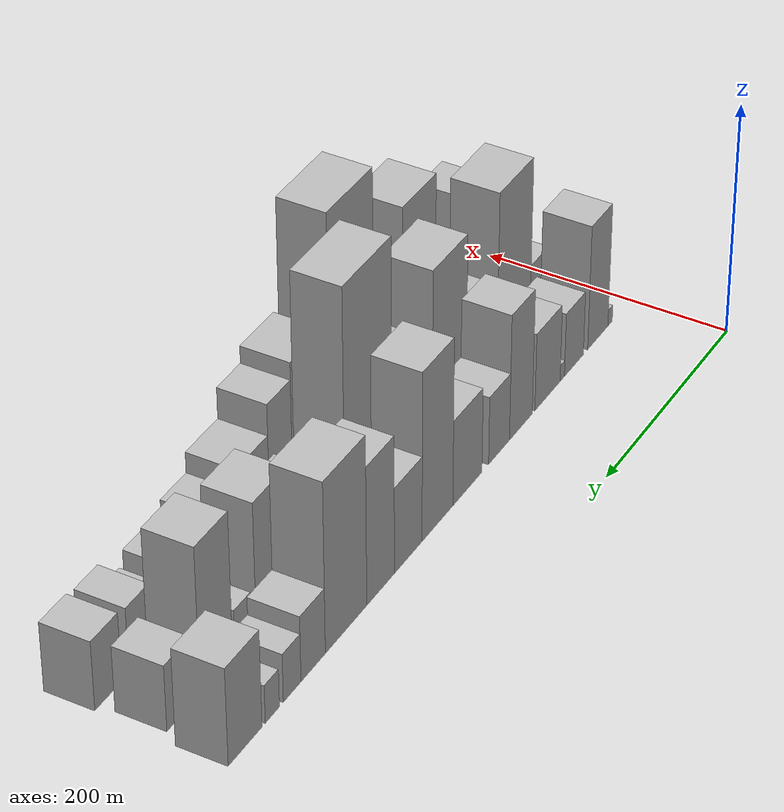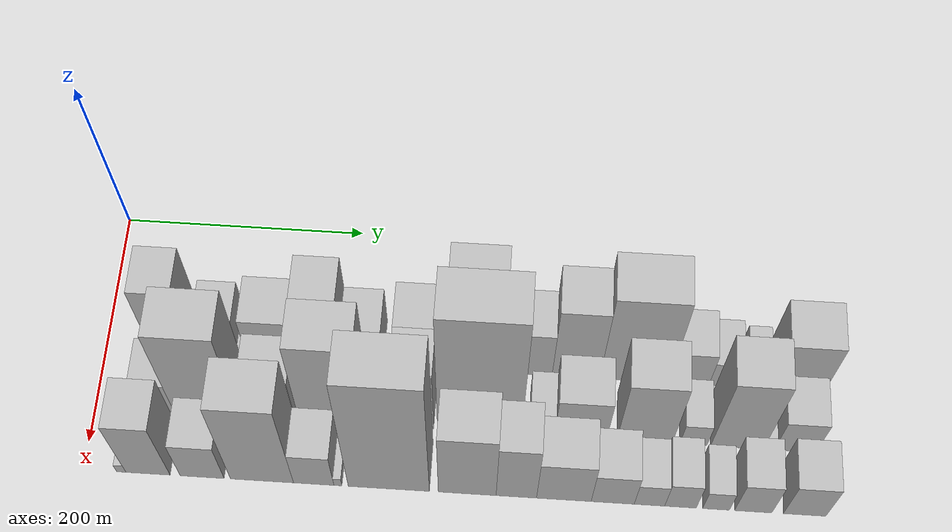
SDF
<sdf version="1.6">
 <world name="default">
  <model name="building_15">
   <static>1</static>
   <pose>100.0000 34.3430 0 0.000000 0.000000 0.000000</pose>
   <link name="link">
    <pose>0 0 7.50 0 0 0</pose>
    <collision name="collision"><geometry><box><size>40.0000 7.2717 15.0000</size></box></geometry></collision>
    <visual name="visual">
     <cast_shadows>0</cast_shadows>
     <geometry><box><size>40.0000 7.2717 15.0000</size></box></geometry>
     <material>
      <script>
       <uri>model://HANNAS_wall/materials/scripts</uri>
       <uri>model://HANNAS_wall/materials/textures</uri>
       <name>vrc/HANNAS_wall</name>
      </script>
     </material>
    </visual>
   </link>
  </model>
  <model name="building_16">
   <static>1</static>
   <pose>100.0000 54.7436 0 0.000000 0.000000 0.000000</pose>
   <link name="link">
    <pose>0 0 55.50 0 0 0</pose>
    <collision name="collision"><geometry><box><size>40.0000 33.5295 111.0000</size></box></geometry></collision>
    <visual name="visual">
     <cast_shadows>0</cast_shadows>
     <geometry><box><size>40.0000 33.5295 111.0000</size></box></geometry>
     <material>
      <script>
       <uri>model://HANNAS_wall/materials/scripts</uri>
       <uri>model://HANNAS_wall/materials/textures</uri>
       <name>vrc/HANNAS_wall</name>
      </script>
     </material>
    </visual>
   </link>
  </model>
  <model name="building_17">
   <static>1</static>
   <pose>100.0000 93.9533 0 0.000000 0.000000 0.000000</pose>
   <link name="link">
    <pose>0 0 28.50 0 0 0</pose>
    <collision name="collision"><geometry><box><size>40.0000 30.8900 57.0000</size></box></geometry></collision>
    <visual name="visual">
     <cast_shadows>0</cast_shadows>
     <geometry><box><size>40.0000 30.8900 57.0000</size></box></geometry>
     <material>
      <script>
       <uri>model://HANNAS_wall/materials/scripts</uri>
       <uri>model://HANNAS_wall/materials/textures</uri>
       <name>vrc/HANNAS_wall</name>
      </script>
     </material>
    </visual>
   </link>
  </model>
  <model name="building_18">
   <static>1</static>
   <pose>100.0000 112.8264 0 0.000000 0.000000 0.000000</pose>
   <link name="link">
    <pose>0 0 7.50 0 0 0</pose>
    <collision name="collision"><geometry><box><size>40.0000 6.8562 15.0000</size></box></geometry></collision>
    <visual name="visual">
     <cast_shadows>0</cast_shadows>
     <geometry><box><size>40.0000 6.8562 15.0000</size></box></geometry>
     <material>
      <script>
       <uri>model://HANNAS_wall/materials/scripts</uri>
       <uri>model://HANNAS_wall/materials/textures</uri>
       <name>vrc/HANNAS_wall</name>
      </script>
     </material>
    </visual>
   </link>
  </model>
  <model name="building_19">
   <static>1</static>
   <pose>100.0000 136.2971 0 0.000000 0.000000 0.000000</pose>
   <link name="link">
    <pose>0 0 34.50 0 0 0</pose>
    <collision name="collision"><geometry><box><size>40.0000 40.0853 69.0000</size></box></geometry></collision>
    <visual name="visual">
     <cast_shadows>0</cast_shadows>
     <geometry><box><size>40.0000 40.0853 69.0000</size></box></geometry>
     <material>
      <script>
       <uri>model://HANNAS_wall/materials/scripts</uri>
       <uri>model://HANNAS_wall/materials/textures</uri>
       <name>vrc/HANNAS_wall</name>
      </script>
     </material>
    </visual>
   </link>
  </model>
  <model name="building_20">
   <static>1</static>
   <pose>100.0000 178.0922 0 0.000000 0.000000 0.000000</pose>
   <link name="link">
    <pose>0 0 55.50 0 0 0</pose>
    <collision name="collision"><geometry><box><size>40.0000 35.5049 111.0000</size></box></geometry></collision>
    <visual name="visual">
     <cast_shadows>0</cast_shadows>
     <geometry><box><size>40.0000 35.5049 111.0000</size></box></geometry>
     <material>
      <script>
       <uri>model://HANNAS_wall/materials/scripts</uri>
       <uri>model://HANNAS_wall/materials/textures</uri>
       <name>vrc/HANNAS_wall</name>
      </script>
     </material>
    </visual>
   </link>
  </model>
  <model name="building_21">
   <static>1</static>
   <pose>100.0000 211.8071 0 0.000000 0.000000 0.000000</pose>
   <link name="link">
    <pose>0 0 30.00 0 0 0</pose>
    <collision name="collision"><geometry><box><size>40.0000 31.9250 60.0000</size></box></geometry></collision>
    <visual name="visual">
     <cast_shadows>0</cast_shadows>
     <geometry><box><size>40.0000 31.9250 60.0000</size></box></geometry>
     <material>
      <script>
       <uri>model://HANNAS_wall/materials/scripts</uri>
       <uri>model://HANNAS_wall/materials/textures</uri>
       <name>vrc/HANNAS_wall</name>
      </script>
     </material>
    </visual>
   </link>
  </model>
  <model name="building_22">
   <static>1</static>
   <pose>100.0000 259.4445 0 0.000000 0.000000 0.000000</pose>
   <link name="link">
    <pose>0 0 37.50 0 0 0</pose>
    <collision name="collision"><geometry><box><size>40.0000 43.3497 75.0000</size></box></geometry></collision>
    <visual name="visual">
     <cast_shadows>0</cast_shadows>
     <geometry><box><size>40.0000 43.3497 75.0000</size></box></geometry>
     <material>
      <script>
       <uri>model://HANNAS_wall/materials/scripts</uri>
       <uri>model://HANNAS_wall/materials/textures</uri>
       <name>vrc/HANNAS_wall</name>
      </script>
     </material>
    </visual>
   </link>
  </model>
  <model name="building_23">
   <static>1</static>
   <pose>100.0000 303.5322 0 0.000000 0.000000 0.000000</pose>
   <link name="link">
    <pose>0 0 73.50 0 0 0</pose>
    <collision name="collision"><geometry><box><size>40.0000 44.8257 147.0000</size></box></geometry></collision>
    <visual name="visual">
     <cast_shadows>0</cast_shadows>
     <geometry><box><size>40.0000 44.8257 147.0000</size></box></geometry>
     <material>
      <script>
       <uri>model://HANNAS_wall/materials/scripts</uri>
       <uri>model://HANNAS_wall/materials/textures</uri>
       <name>vrc/HANNAS_wall</name>
      </script>
     </material>
    </visual>
   </link>
  </model>
  <model name="building_24">
   <static>1</static>
   <pose>100.0000 345.5613 0 0.000000 0.000000 0.000000</pose>
   <link name="link">
    <pose>0 0 37.50 0 0 0</pose>
    <collision name="collision"><geometry><box><size>40.0000 39.2325 75.0000</size></box></geometry></collision>
    <visual name="visual">
     <cast_shadows>0</cast_shadows>
     <geometry><box><size>40.0000 39.2325 75.0000</size></box></geometry>
     <material>
      <script>
       <uri>model://HANNAS_wall/materials/scripts</uri>
       <uri>model://HANNAS_wall/materials/textures</uri>
       <name>vrc/HANNAS_wall</name>
      </script>
     </material>
    </visual>
   </link>
  </model>
  <model name="building_25">
   <static>1</static>
   <pose>100.0000 384.4321 0 0.000000 0.000000 0.000000</pose>
   <link name="link">
    <pose>0 0 60.00 0 0 0</pose>
    <collision name="collision"><geometry><box><size>40.0000 38.5091 120.0000</size></box></geometry></collision>
    <visual name="visual">
     <cast_shadows>0</cast_shadows>
     <geometry><box><size>40.0000 38.5091 120.0000</size></box></geometry>
     <material>
      <script>
       <uri>model://HANNAS_wall/materials/scripts</uri>
       <uri>model://HANNAS_wall/materials/textures</uri>
       <name>vrc/HANNAS_wall</name>
      </script>
     </material>
    </visual>
   </link>
  </model>
  <model name="building_26">
   <static>1</static>
   <pose>100.0000 431.7537 0 0.000000 0.000000 0.000000</pose>
   <link name="link">
    <pose>0 0 73.50 0 0 0</pose>
    <collision name="collision"><geometry><box><size>40.0000 56.1342 147.0000</size></box></geometry></collision>
    <visual name="visual">
     <cast_shadows>0</cast_shadows>
     <geometry><box><size>40.0000 56.1342 147.0000</size></box></geometry>
     <material>
      <script>
       <uri>model://HANNAS_wall/materials/scripts</uri>
       <uri>model://HANNAS_wall/materials/textures</uri>
       <name>vrc/HANNAS_wall</name>
      </script>
     </material>
    </visual>
   </link>
  </model>
  <model name="building_27">
   <static>1</static>
   <pose>100.0000 475.9596 0 0.000000 0.000000 0.000000</pose>
   <link name="link">
    <pose>0 0 28.50 0 0 0</pose>
    <collision name="collision"><geometry><box><size>40.0000 32.2775 57.0000</size></box></geometry></collision>
    <visual name="visual">
     <cast_shadows>0</cast_shadows>
     <geometry><box><size>40.0000 32.2775 57.0000</size></box></geometry>
     <material>
      <script>
       <uri>model://HANNAS_wall/materials/scripts</uri>
       <uri>model://HANNAS_wall/materials/textures</uri>
       <name>vrc/HANNAS_wall</name>
      </script>
     </material>
    </visual>
   </link>
  </model>
  <model name="building_28">
   <static>1</static>
   <pose>100.0000 503.5935 0 0.000000 0.000000 0.000000</pose>
   <link name="link">
    <pose>0 0 21.00 0 0 0</pose>
    <collision name="collision"><geometry><box><size>40.0000 22.9903 42.0000</size></box></geometry></collision>
    <visual name="visual">
     <cast_shadows>0</cast_shadows>
     <geometry><box><size>40.0000 22.9903 42.0000</size></box></geometry>
     <material>
      <script>
       <uri>model://HANNAS_wall/materials/scripts</uri>
       <uri>model://HANNAS_wall/materials/textures</uri>
       <name>vrc/HANNAS_wall</name>
      </script>
     </material>
    </visual>
   </link>
  </model>
  <model name="building_29">
   <static>1</static>
   <pose>100.0000 529.2571 0 0.000000 0.000000 0.000000</pose>
   <link name="link">
    <pose>0 0 16.50 0 0 0</pose>
    <collision name="collision"><geometry><box><size>40.0000 18.3371 33.0000</size></box></geometry></collision>
    <visual name="visual">
     <cast_shadows>0</cast_shadows>
     <geometry><box><size>40.0000 18.3371 33.0000</size></box></geometry>
     <material>
      <script>
       <uri>model://HANNAS_wall/materials/scripts</uri>
       <uri>model://HANNAS_wall/materials/textures</uri>
       <name>vrc/HANNAS_wall</name>
      </script>
     </material>
    </visual>
   </link>
  </model>
  <model name="building_30">
   <static>1</static>
   <pose>100.0000 563.7193 0 0.000000 0.000000 0.000000</pose>
   <link name="link">
    <pose>0 0 42.00 0 0 0</pose>
    <collision name="collision"><geometry><box><size>40.0000 42.5873 84.0000</size></box></geometry></collision>
    <visual name="visual">
     <cast_shadows>0</cast_shadows>
     <geometry><box><size>40.0000 42.5873 84.0000</size></box></geometry>
     <material>
      <script>
       <uri>model://HANNAS_wall/materials/scripts</uri>
       <uri>model://HANNAS_wall/materials/textures</uri>
       <name>vrc/HANNAS_wall</name>
      </script>
     </material>
    </visual>
   </link>
  </model>
  <model name="building_49">
   <static>1</static>
   <pose>152.0000 31.8512 0 0.000000 0.000000 0.000000</pose>
   <link name="link">
    <pose>0 0 9.00 0 0 0</pose>
    <collision name="collision"><geometry><box><size>40.0000 7.8231 18.0000</size></box></geometry></collision>
    <visual name="visual">
     <cast_shadows>0</cast_shadows>
     <geometry><box><size>40.0000 7.8231 18.0000</size></box></geometry>
     <material>
      <script>
       <uri>model://HANNAS_wall/materials/scripts</uri>
       <uri>model://HANNAS_wall/materials/textures</uri>
       <name>vrc/HANNAS_wall</name>
      </script>
     </material>
    </visual>
   </link>
  </model>
  <model name="building_50">
   <static>1</static>
   <pose>152.0000 50.0899 0 0.000000 0.000000 0.000000</pose>
   <link name="link">
    <pose>0 0 27.00 0 0 0</pose>
    <collision name="collision"><geometry><box><size>40.0000 28.6542 54.0000</size></box></geometry></collision>
    <visual name="visual">
     <cast_shadows>0</cast_shadows>
     <geometry><box><size>40.0000 28.6542 54.0000</size></box></geometry>
     <material>
      <script>
       <uri>model://HANNAS_wall/materials/scripts</uri>
       <uri>model://HANNAS_wall/materials/textures</uri>
       <name>vrc/HANNAS_wall</name>
      </script>
     </material>
    </visual>
   </link>
  </model>
  <model name="building_51">
   <static>1</static>
   <pose>152.0000 90.5990 0 0.000000 0.000000 0.000000</pose>
   <link name="link">
    <pose>0 0 75.00 0 0 0</pose>
    <collision name="collision"><geometry><box><size>40.0000 52.3640 150.0000</size></box></geometry></collision>
    <visual name="visual">
     <cast_shadows>0</cast_shadows>
     <geometry><box><size>40.0000 52.3640 150.0000</size></box></geometry>
     <material>
      <script>
       <uri>model://HANNAS_wall/materials/scripts</uri>
       <uri>model://HANNAS_wall/materials/textures</uri>
       <name>vrc/HANNAS_wall</name>
      </script>
     </material>
    </visual>
   </link>
  </model>
  <model name="building_52">
   <static>1</static>
   <pose>152.0000 119.8680 0 0.000000 0.000000 0.000000</pose>
   <link name="link">
    <pose>0 0 7.50 0 0 0</pose>
    <collision name="collision"><geometry><box><size>40.0000 6.1741 15.0000</size></box></geometry></collision>
    <visual name="visual">
     <cast_shadows>0</cast_shadows>
     <geometry><box><size>40.0000 6.1741 15.0000</size></box></geometry>
     <material>
      <script>
       <uri>model://HANNAS_wall/materials/scripts</uri>
       <uri>model://HANNAS_wall/materials/textures</uri>
       <name>vrc/HANNAS_wall</name>
      </script>
     </material>
    </visual>
   </link>
  </model>
  <model name="building_53">
   <static>1</static>
   <pose>152.0000 142.4640 0 0.000000 0.000000 0.000000</pose>
   <link name="link">
    <pose>0 0 37.50 0 0 0</pose>
    <collision name="collision"><geometry><box><size>40.0000 39.0178 75.0000</size></box></geometry></collision>
    <visual name="visual">
     <cast_shadows>0</cast_shadows>
     <geometry><box><size>40.0000 39.0178 75.0000</size></box></geometry>
     <material>
      <script>
       <uri>model://HANNAS_wall/materials/scripts</uri>
       <uri>model://HANNAS_wall/materials/textures</uri>
       <name>vrc/HANNAS_wall</name>
      </script>
     </material>
    </visual>
   </link>
  </model>
  <model name="building_54">
   <static>1</static>
   <pose>152.0000 190.5703 0 0.000000 0.000000 0.000000</pose>
   <link name="link">
    <pose>0 0 72.00 0 0 0</pose>
    <collision name="collision"><geometry><box><size>40.0000 51.1949 144.0000</size></box></geometry></collision>
    <visual name="visual">
     <cast_shadows>0</cast_shadows>
     <geometry><box><size>40.0000 51.1949 144.0000</size></box></geometry>
     <material>
      <script>
       <uri>model://HANNAS_wall/materials/scripts</uri>
       <uri>model://HANNAS_wall/materials/textures</uri>
       <name>vrc/HANNAS_wall</name>
      </script>
     </material>
    </visual>
   </link>
  </model>
  <model name="building_55">
   <static>1</static>
   <pose>152.0000 228.2397 0 0.000000 0.000000 0.000000</pose>
   <link name="link">
    <pose>0 0 21.00 0 0 0</pose>
    <collision name="collision"><geometry><box><size>40.0000 24.1439 42.0000</size></box></geometry></collision>
    <visual name="visual">
     <cast_shadows>0</cast_shadows>
     <geometry><box><size>40.0000 24.1439 42.0000</size></box></geometry>
     <material>
      <script>
       <uri>model://HANNAS_wall/materials/scripts</uri>
       <uri>model://HANNAS_wall/materials/textures</uri>
       <name>vrc/HANNAS_wall</name>
      </script>
     </material>
    </visual>
   </link>
  </model>
  <model name="building_56">
   <static>1</static>
   <pose>152.0000 256.5403 0 0.000000 0.000000 0.000000</pose>
   <link name="link">
    <pose>0 0 52.50 0 0 0</pose>
    <collision name="collision"><geometry><box><size>40.0000 32.4572 105.0000</size></box></geometry></collision>
    <visual name="visual">
     <cast_shadows>0</cast_shadows>
     <geometry><box><size>40.0000 32.4572 105.0000</size></box></geometry>
     <material>
      <script>
       <uri>model://HANNAS_wall/materials/scripts</uri>
       <uri>model://HANNAS_wall/materials/textures</uri>
       <name>vrc/HANNAS_wall</name>
      </script>
     </material>
    </visual>
   </link>
  </model>
  <model name="building_57">
   <static>1</static>
   <pose>152.0000 309.2211 0 0.000000 0.000000 0.000000</pose>
   <link name="link">
    <pose>0 0 105.00 0 0 0</pose>
    <collision name="collision"><geometry><box><size>40.0000 66.9044 210.0000</size></box></geometry></collision>
    <visual name="visual">
     <cast_shadows>0</cast_shadows>
     <geometry><box><size>40.0000 66.9044 210.0000</size></box></geometry>
     <material>
      <script>
       <uri>model://HANNAS_wall/materials/scripts</uri>
       <uri>model://HANNAS_wall/materials/textures</uri>
       <name>vrc/HANNAS_wall</name>
      </script>
     </material>
    </visual>
   </link>
  </model>
  <model name="building_58">
   <static>1</static>
   <pose>152.0000 358.8041 0 0.000000 0.000000 0.000000</pose>
   <link name="link">
    <pose>0 0 18.00 0 0 0</pose>
    <collision name="collision"><geometry><box><size>40.0000 20.2617 36.0000</size></box></geometry></collision>
    <visual name="visual">
     <cast_shadows>0</cast_shadows>
     <geometry><box><size>40.0000 20.2617 36.0000</size></box></geometry>
     <material>
      <script>
       <uri>model://HANNAS_wall/materials/scripts</uri>
       <uri>model://HANNAS_wall/materials/textures</uri>
       <name>vrc/HANNAS_wall</name>
      </script>
     </material>
    </visual>
   </link>
  </model>
  <model name="building_59">
   <static>1</static>
   <pose>152.0000 389.7666 0 0.000000 0.000000 0.000000</pose>
   <link name="link">
    <pose>0 0 36.00 0 0 0</pose>
    <collision name="collision"><geometry><box><size>40.0000 41.6634 72.0000</size></box></geometry></collision>
    <visual name="visual">
     <cast_shadows>0</cast_shadows>
     <geometry><box><size>40.0000 41.6634 72.0000</size></box></geometry>
     <material>
      <script>
       <uri>model://HANNAS_wall/materials/scripts</uri>
       <uri>model://HANNAS_wall/materials/textures</uri>
       <name>vrc/HANNAS_wall</name>
      </script>
     </material>
    </visual>
   </link>
  </model>
  <model name="building_60">
   <static>1</static>
   <pose>152.0000 440.6030 0 0.000000 0.000000 0.000000</pose>
   <link name="link">
    <pose>0 0 55.50 0 0 0</pose>
    <collision name="collision"><geometry><box><size>40.0000 44.0094 111.0000</size></box></geometry></collision>
    <visual name="visual">
     <cast_shadows>0</cast_shadows>
     <geometry><box><size>40.0000 44.0094 111.0000</size></box></geometry>
     <material>
      <script>
       <uri>model://HANNAS_wall/materials/scripts</uri>
       <uri>model://HANNAS_wall/materials/textures</uri>
       <name>vrc/HANNAS_wall</name>
      </script>
     </material>
    </visual>
   </link>
  </model>
  <model name="building_61">
   <static>1</static>
   <pose>152.0000 479.3538 0 0.000000 0.000000 0.000000</pose>
   <link name="link">
    <pose>0 0 19.50 0 0 0</pose>
    <collision name="collision"><geometry><box><size>40.0000 21.4921 39.0000</size></box></geometry></collision>
    <visual name="visual">
     <cast_shadows>0</cast_shadows>
     <geometry><box><size>40.0000 21.4921 39.0000</size></box></geometry>
     <material>
      <script>
       <uri>model://HANNAS_wall/materials/scripts</uri>
       <uri>model://HANNAS_wall/materials/textures</uri>
       <name>vrc/HANNAS_wall</name>
      </script>
     </material>
    </visual>
   </link>
  </model>
  <model name="building_62">
   <static>1</static>
   <pose>152.0000 513.9179 0 0.000000 0.000000 0.000000</pose>
   <link name="link">
    <pose>0 0 63.00 0 0 0</pose>
    <collision name="collision"><geometry><box><size>40.0000 41.6362 126.0000</size></box></geometry></collision>
    <visual name="visual">
     <cast_shadows>0</cast_shadows>
     <geometry><box><size>40.0000 41.6362 126.0000</size></box></geometry>
     <material>
      <script>
       <uri>model://HANNAS_wall/materials/scripts</uri>
       <uri>model://HANNAS_wall/materials/textures</uri>
       <name>vrc/HANNAS_wall</name>
      </script>
     </material>
    </visual>
   </link>
  </model>
  <model name="building_63">
   <static>1</static>
   <pose>152.0000 539.0774 0 0.000000 0.000000 0.000000</pose>
   <link name="link">
    <pose>0 0 9.00 0 0 0</pose>
    <collision name="collision"><geometry><box><size>40.0000 8.6828 18.0000</size></box></geometry></collision>
    <visual name="visual">
     <cast_shadows>0</cast_shadows>
     <geometry><box><size>40.0000 8.6828 18.0000</size></box></geometry>
     <material>
      <script>
       <uri>model://HANNAS_wall/materials/scripts</uri>
       <uri>model://HANNAS_wall/materials/textures</uri>
       <name>vrc/HANNAS_wall</name>
      </script>
     </material>
    </visual>
   </link>
  </model>
  <model name="building_64">
   <static>1</static>
   <pose>152.0000 559.8365 0 0.000000 0.000000 0.000000</pose>
   <link name="link">
    <pose>0 0 28.50 0 0 0</pose>
    <collision name="collision"><geometry><box><size>40.0000 32.8355 57.0000</size></box></geometry></collision>
    <visual name="visual">
     <cast_shadows>0</cast_shadows>
     <geometry><box><size>40.0000 32.8355 57.0000</size></box></geometry>
     <material>
      <script>
       <uri>model://HANNAS_wall/materials/scripts</uri>
       <uri>model://HANNAS_wall/materials/textures</uri>
       <name>vrc/HANNAS_wall</name>
      </script>
     </material>
    </visual>
   </link>
  </model>
  <model name="building_81">
   <static>1</static>
   <pose>204.0000 29.9520 0 0.000000 0.000000 0.000000</pose>
   <link name="link">
    <pose>0 0 7.50 0 0 0</pose>
    <collision name="collision"><geometry><box><size>40.0000 7.3735 15.0000</size></box></geometry></collision>
    <visual name="visual">
     <cast_shadows>0</cast_shadows>
     <geometry><box><size>40.0000 7.3735 15.0000</size></box></geometry>
     <material>
      <script>
       <uri>model://HANNAS_wall/materials/scripts</uri>
       <uri>model://HANNAS_wall/materials/textures</uri>
       <name>vrc/HANNAS_wall</name>
      </script>
     </material>
    </visual>
   </link>
  </model>
  <model name="building_82">
   <static>1</static>
   <pose>204.0000 51.1519 0 0.000000 0.000000 0.000000</pose>
   <link name="link">
    <pose>0 0 49.50 0 0 0</pose>
    <collision name="collision"><geometry><box><size>40.0000 35.0263 99.0000</size></box></geometry></collision>
    <visual name="visual">
     <cast_shadows>0</cast_shadows>
     <geometry><box><size>40.0000 35.0263 99.0000</size></box></geometry>
     <material>
      <script>
       <uri>model://HANNAS_wall/materials/scripts</uri>
       <uri>model://HANNAS_wall/materials/textures</uri>
       <name>vrc/HANNAS_wall</name>
      </script>
     </material>
    </visual>
   </link>
  </model>
  <model name="building_83">
   <static>1</static>
   <pose>204.0000 94.0574 0 0.000000 0.000000 0.000000</pose>
   <link name="link">
    <pose>0 0 33.00 0 0 0</pose>
    <collision name="collision"><geometry><box><size>40.0000 34.7847 66.0000</size></box></geometry></collision>
    <visual name="visual">
     <cast_shadows>0</cast_shadows>
     <geometry><box><size>40.0000 34.7847 66.0000</size></box></geometry>
     <material>
      <script>
       <uri>model://HANNAS_wall/materials/scripts</uri>
       <uri>model://HANNAS_wall/materials/textures</uri>
       <name>vrc/HANNAS_wall</name>
      </script>
     </material>
    </visual>
   </link>
  </model>
  <model name="building_84">
   <static>1</static>
   <pose>204.0000 141.3452 0 0.000000 0.000000 0.000000</pose>
   <link name="link">
    <pose>0 0 75.00 0 0 0</pose>
    <collision name="collision"><geometry><box><size>40.0000 49.7909 150.0000</size></box></geometry></collision>
    <visual name="visual">
     <cast_shadows>0</cast_shadows>
     <geometry><box><size>40.0000 49.7909 150.0000</size></box></geometry>
     <material>
      <script>
       <uri>model://HANNAS_wall/materials/scripts</uri>
       <uri>model://HANNAS_wall/materials/textures</uri>
       <name>vrc/HANNAS_wall</name>
      </script>
     </material>
    </visual>
   </link>
  </model>
  <model name="building_85">
   <static>1</static>
   <pose>204.0000 182.1629 0 0.000000 0.000000 0.000000</pose>
   <link name="link">
    <pose>0 0 30.00 0 0 0</pose>
    <collision name="collision"><geometry><box><size>40.0000 31.8446 60.0000</size></box></geometry></collision>
    <visual name="visual">
     <cast_shadows>0</cast_shadows>
     <geometry><box><size>40.0000 31.8446 60.0000</size></box></geometry>
     <material>
      <script>
       <uri>model://HANNAS_wall/materials/scripts</uri>
       <uri>model://HANNAS_wall/materials/textures</uri>
       <name>vrc/HANNAS_wall</name>
      </script>
     </material>
    </visual>
   </link>
  </model>
  <model name="building_86">
   <static>1</static>
   <pose>204.0000 201.2403 0 0.000000 0.000000 0.000000</pose>
   <link name="link">
    <pose>0 0 7.50 0 0 0</pose>
    <collision name="collision"><geometry><box><size>40.0000 6.3101 15.0000</size></box></geometry></collision>
    <visual name="visual">
     <cast_shadows>0</cast_shadows>
     <geometry><box><size>40.0000 6.3101 15.0000</size></box></geometry>
     <material>
      <script>
       <uri>model://HANNAS_wall/materials/scripts</uri>
       <uri>model://HANNAS_wall/materials/textures</uri>
       <name>vrc/HANNAS_wall</name>
      </script>
     </material>
    </visual>
   </link>
  </model>
  <model name="building_87">
   <static>1</static>
   <pose>204.0000 241.2767 0 0.000000 0.000000 0.000000</pose>
   <link name="link">
    <pose>0 0 105.00 0 0 0</pose>
    <collision name="collision"><geometry><box><size>40.0000 63.7628 210.0000</size></box></geometry></collision>
    <visual name="visual">
     <cast_shadows>0</cast_shadows>
     <geometry><box><size>40.0000 63.7628 210.0000</size></box></geometry>
     <material>
      <script>
       <uri>model://HANNAS_wall/materials/scripts</uri>
       <uri>model://HANNAS_wall/materials/textures</uri>
       <name>vrc/HANNAS_wall</name>
      </script>
     </material>
    </visual>
   </link>
  </model>
  <model name="building_88">
   <static>1</static>
   <pose>204.0000 302.7920 0 0.000000 0.000000 0.000000</pose>
   <link name="link">
    <pose>0 0 58.50 0 0 0</pose>
    <collision name="collision"><geometry><box><size>40.0000 45.2677 117.0000</size></box></geometry></collision>
    <visual name="visual">
     <cast_shadows>0</cast_shadows>
     <geometry><box><size>40.0000 45.2677 117.0000</size></box></geometry>
     <material>
      <script>
       <uri>model://HANNAS_wall/materials/scripts</uri>
       <uri>model://HANNAS_wall/materials/textures</uri>
       <name>vrc/HANNAS_wall</name>
      </script>
     </material>
    </visual>
   </link>
  </model>
  <model name="building_89">
   <static>1</static>
   <pose>204.0000 341.2380 0 0.000000 0.000000 0.000000</pose>
   <link name="link">
    <pose>0 0 51.00 0 0 0</pose>
    <collision name="collision"><geometry><box><size>40.0000 31.6242 102.0000</size></box></geometry></collision>
    <visual name="visual">
     <cast_shadows>0</cast_shadows>
     <geometry><box><size>40.0000 31.6242 102.0000</size></box></geometry>
     <material>
      <script>
       <uri>model://HANNAS_wall/materials/scripts</uri>
       <uri>model://HANNAS_wall/materials/textures</uri>
       <name>vrc/HANNAS_wall</name>
      </script>
     </material>
    </visual>
   </link>
  </model>
  <model name="building_90">
   <static>1</static>
   <pose>204.0000 378.3754 0 0.000000 0.000000 0.000000</pose>
   <link name="link">
    <pose>0 0 37.50 0 0 0</pose>
    <collision name="collision"><geometry><box><size>40.0000 42.6506 75.0000</size></box></geometry></collision>
    <visual name="visual">
     <cast_shadows>0</cast_shadows>
     <geometry><box><size>40.0000 42.6506 75.0000</size></box></geometry>
     <material>
      <script>
       <uri>model://HANNAS_wall/materials/scripts</uri>
       <uri>model://HANNAS_wall/materials/textures</uri>
       <name>vrc/HANNAS_wall</name>
      </script>
     </material>
    </visual>
   </link>
  </model>
  <model name="building_91">
   <static>1</static>
   <pose>204.0000 416.4939 0 0.000000 0.000000 0.000000</pose>
   <link name="link">
    <pose>0 0 28.50 0 0 0</pose>
    <collision name="collision"><geometry><box><size>40.0000 33.5864 57.0000</size></box></geometry></collision>
    <visual name="visual">
     <cast_shadows>0</cast_shadows>
     <geometry><box><size>40.0000 33.5864 57.0000</size></box></geometry>
     <material>
      <script>
       <uri>model://HANNAS_wall/materials/scripts</uri>
       <uri>model://HANNAS_wall/materials/textures</uri>
       <name>vrc/HANNAS_wall</name>
      </script>
     </material>
    </visual>
   </link>
  </model>
  <model name="building_92">
   <static>1</static>
   <pose>204.0000 445.1342 0 0.000000 0.000000 0.000000</pose>
   <link name="link">
    <pose>0 0 21.00 0 0 0</pose>
    <collision name="collision"><geometry><box><size>40.0000 23.6941 42.0000</size></box></geometry></collision>
    <visual name="visual">
     <cast_shadows>0</cast_shadows>
     <geometry><box><size>40.0000 23.6941 42.0000</size></box></geometry>
     <material>
      <script>
       <uri>model://HANNAS_wall/materials/scripts</uri>
       <uri>model://HANNAS_wall/materials/textures</uri>
       <name>vrc/HANNAS_wall</name>
      </script>
     </material>
    </visual>
   </link>
  </model>
  <model name="building_93">
   <static>1</static>
   <pose>204.0000 469.2589 0 0.000000 0.000000 0.000000</pose>
   <link name="link">
    <pose>0 0 24.00 0 0 0</pose>
    <collision name="collision"><geometry><box><size>40.0000 24.5554 48.0000</size></box></geometry></collision>
    <visual name="visual">
     <cast_shadows>0</cast_shadows>
     <geometry><box><size>40.0000 24.5554 48.0000</size></box></geometry>
     <material>
      <script>
       <uri>model://HANNAS_wall/materials/scripts</uri>
       <uri>model://HANNAS_wall/materials/textures</uri>
       <name>vrc/HANNAS_wall</name>
      </script>
     </material>
    </visual>
   </link>
  </model>
  <model name="building_94">
   <static>1</static>
   <pose>204.0000 496.9364 0 0.000000 0.000000 0.000000</pose>
   <link name="link">
    <pose>0 0 18.00 0 0 0</pose>
    <collision name="collision"><geometry><box><size>40.0000 20.7994 36.0000</size></box></geometry></collision>
    <visual name="visual">
     <cast_shadows>0</cast_shadows>
     <geometry><box><size>40.0000 20.7994 36.0000</size></box></geometry>
     <material>
      <script>
       <uri>model://HANNAS_wall/materials/scripts</uri>
       <uri>model://HANNAS_wall/materials/textures</uri>
       <name>vrc/HANNAS_wall</name>
      </script>
     </material>
    </visual>
   </link>
  </model>
  <model name="building_95">
   <static>1</static>
   <pose>204.0000 525.8108 0 0.000000 0.000000 0.000000</pose>
   <link name="link">
    <pose>0 0 28.50 0 0 0</pose>
    <collision name="collision"><geometry><box><size>40.0000 28.9494 57.0000</size></box></geometry></collision>
    <visual name="visual">
     <cast_shadows>0</cast_shadows>
     <geometry><box><size>40.0000 28.9494 57.0000</size></box></geometry>
     <material>
      <script>
       <uri>model://HANNAS_wall/materials/scripts</uri>
       <uri>model://HANNAS_wall/materials/textures</uri>
       <name>vrc/HANNAS_wall</name>
      </script>
     </material>
    </visual>
   </link>
  </model>
  <model name="building_96">
   <static>1</static>
   <pose>204.0000 565.6783 0 0.000000 0.000000 0.000000</pose>
   <link name="link">
    <pose>0 0 30.00 0 0 0</pose>
    <collision name="collision"><geometry><box><size>40.0000 32.7857 60.0000</size></box></geometry></collision>
    <visual name="visual">
     <cast_shadows>0</cast_shadows>
     <geometry><box><size>40.0000 32.7857 60.0000</size></box></geometry>
     <material>
      <script>
       <uri>model://HANNAS_wall/materials/scripts</uri>
       <uri>model://HANNAS_wall/materials/textures</uri>
       <name>vrc/HANNAS_wall</name>
      </script>
     </material>
    </visual>
   </link>
  </model>
 </world>
</sdf>
